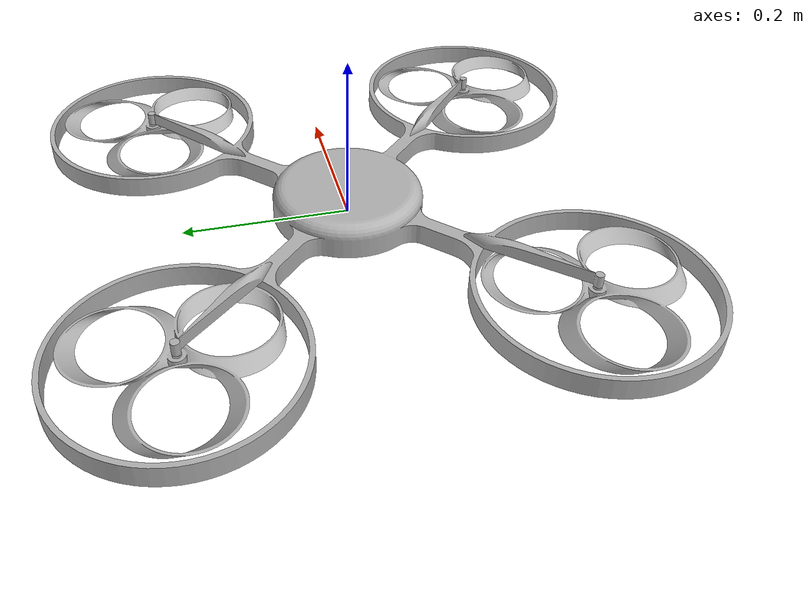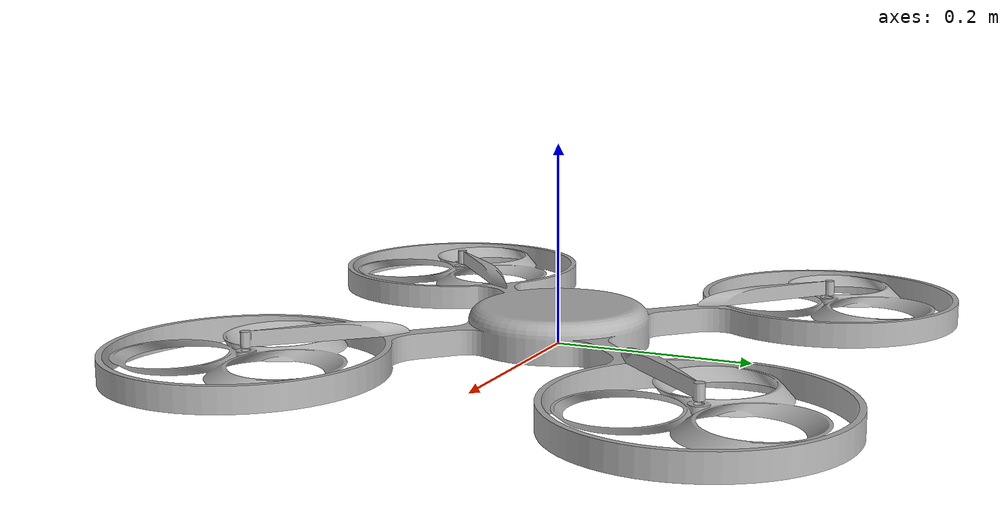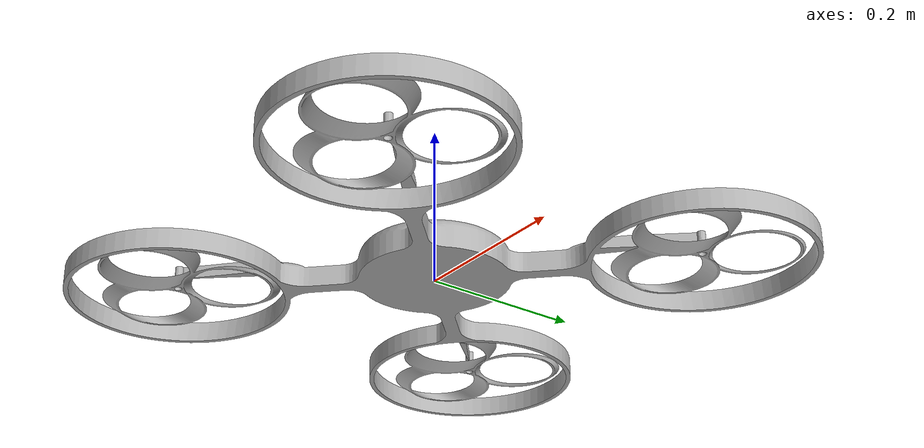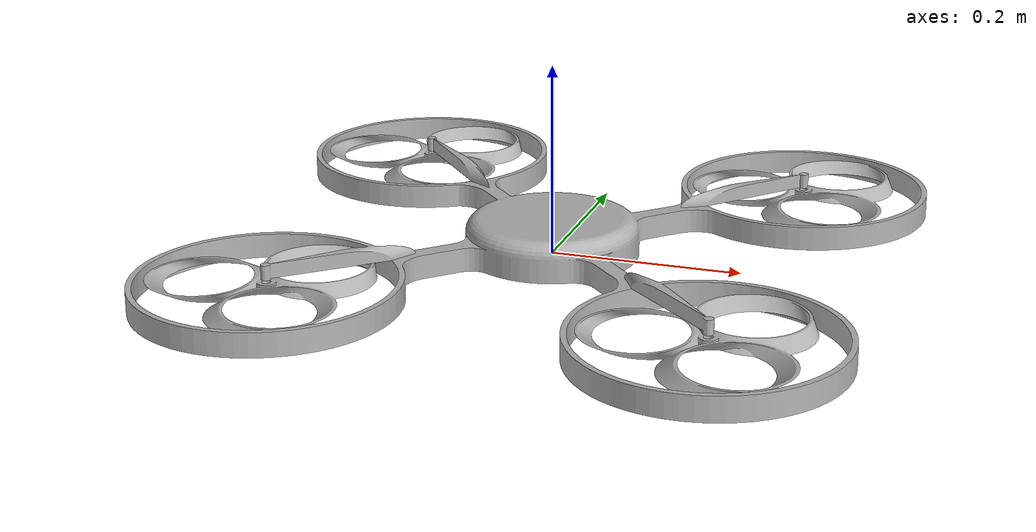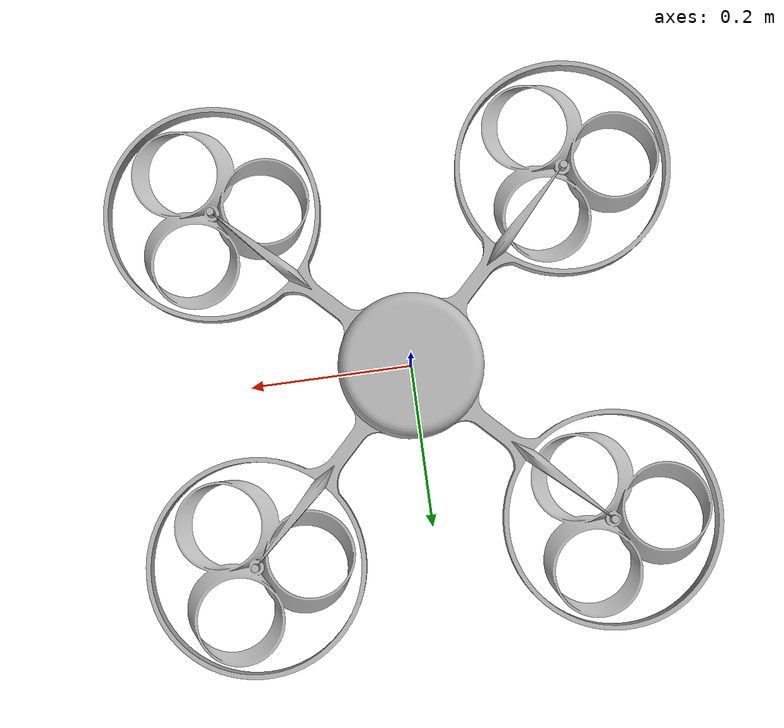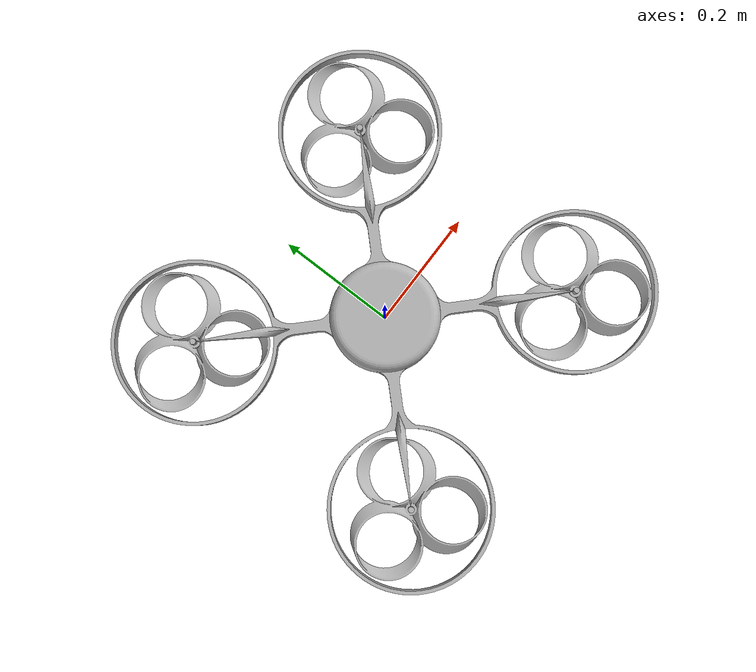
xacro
<?xml version="1.0" ?>
<robot name="my_drone" xmlns:xacro="http://www.ros.org/wiki/xacro">

<xacro:include filename="$(find my_drone_description)/urdf/materials.xacro" />
<xacro:include filename="$(find my_drone_description)/urdf/my_drone.gazebo" />

<link name="base_link">
  <inertial>
    <origin xyz="4.17965341753053e-17 5.015584101036636e-16 0.017301298080480712" rpy="0 0 0"/>
    <mass value="3.665311825085718"/>
    <inertia ixx="0.263092" iyy="0.263092" izz="0.52304" ixy="-0.0" iyz="-0.0" ixz="-0.0"/>
  </inertial>
  <visual>
    <origin xyz="0 0 0" rpy="0 0 0"/>
    <geometry>
      <mesh filename="file://$(find my_drone_description)/meshes/base_link.stl" scale="0.001 0.001 0.001"/>
    </geometry>
    <material name="silver"/>
  </visual>
  <collision>
    <origin xyz="0 0 0" rpy="0 0 0"/>
    <geometry>
      <mesh filename="file://$(find my_drone_description)/meshes/base_link.stl" scale="0.001 0.001 0.001"/>
    </geometry>
  </collision>
</link>

<link name="blade1_2">
  <inertial>
    <origin xyz="-0.0001204522493546134 4.7913499967966455e-05 -0.007840222731449874" rpy="0 0 0"/>
    <mass value="0.24117720097446887"/>
    <inertia ixx="0.00081" iyy="0.00081" izz="0.001616" ixy="0.0" iyz="0.0" ixz="-0.0"/>
  </inertial>
  <visual>
    <origin xyz="0.220002 -0.220002 -0.025" rpy="0 0 0"/>
    <geometry>
      <mesh filename="file://$(find my_drone_description)/meshes/blade1_2.stl" scale="0.001 0.001 0.001"/>
    </geometry>
    <material name="silver"/>
  </visual>
  <collision>
    <origin xyz="0.220002 -0.220002 -0.025" rpy="0 0 0"/>
    <geometry>
      <mesh filename="file://$(find my_drone_description)/meshes/blade1_2.stl" scale="0.001 0.001 0.001"/>
    </geometry>
  </collision>
</link>

<link name="blade1_3">
  <inertial>
    <origin xyz="-6.506576456175028e-05 0.00011240046749064203 -0.007840222731449811" rpy="0 0 0"/>
    <mass value="0.24117720097446887"/>
    <inertia ixx="0.00081" iyy="0.00081" izz="0.001616" ixy="0.0" iyz="0.0" ixz="-0.0"/>
  </inertial>
  <visual>
    <origin xyz="-0.220002 -0.220002 -0.025" rpy="0 0 0"/>
    <geometry>
      <mesh filename="file://$(find my_drone_description)/meshes/blade1_3.stl" scale="0.001 0.001 0.001"/>
    </geometry>
    <material name="silver"/>
  </visual>
  <collision>
    <origin xyz="-0.220002 -0.220002 -0.025" rpy="0 0 0"/>
    <geometry>
      <mesh filename="file://$(find my_drone_description)/meshes/blade1_3.stl" scale="0.001 0.001 0.001"/>
    </geometry>
  </collision>
</link>

<link name="blade1_4">
  <inertial>
    <origin xyz="-8.695143702061592e-05 9.709402994390048e-05 -0.007840222731449874" rpy="0 0 0"/>
    <mass value="0.24117720097446887"/>
    <inertia ixx="0.00081" iyy="0.00081" izz="0.001616" ixy="0.0" iyz="0.0" ixz="-0.0"/>
  </inertial>
  <visual>
    <origin xyz="-0.220002 0.220002 -0.025" rpy="0 0 0"/>
    <geometry>
      <mesh filename="file://$(find my_drone_description)/meshes/blade1_4.stl" scale="0.001 0.001 0.001"/>
    </geometry>
    <material name="silver"/>
  </visual>
  <collision>
    <origin xyz="-0.220002 0.220002 -0.025" rpy="0 0 0"/>
    <geometry>
      <mesh filename="file://$(find my_drone_description)/meshes/blade1_4.stl" scale="0.001 0.001 0.001"/>
    </geometry>
  </collision>
</link>

<link name="blade1_5">
  <inertial>
    <origin xyz="-7.907640569984609e-05 0.00010320621577208922 -0.007840222731449874" rpy="0 0 0"/>
    <mass value="0.24117720097446887"/>
    <inertia ixx="0.00081" iyy="0.00081" izz="0.001616" ixy="0.0" iyz="0.0" ixz="-0.0"/>
  </inertial>
  <visual>
    <origin xyz="0.220002 0.220002 -0.025" rpy="0 0 0"/>
    <geometry>
      <mesh filename="file://$(find my_drone_description)/meshes/blade1_5.stl" scale="0.001 0.001 0.001"/>
    </geometry>
    <material name="silver"/>
  </visual>
  <collision>
    <origin xyz="0.220002 0.220002 -0.025" rpy="0 0 0"/>
    <geometry>
      <mesh filename="file://$(find my_drone_description)/meshes/blade1_5.stl" scale="0.001 0.001 0.001"/>
    </geometry>
  </collision>
</link>

<joint name="Revolute 1" type="continuous">
  <origin xyz="-0.220002 0.220002 0.025" rpy="0 0 0"/>
  <parent link="base_link"/>
  <child link="blade1_2"/>
  <axis xyz="0.0 0.0 1.0"/>
</joint>

<joint name="Revolute 2" type="continuous">
  <origin xyz="0.220002 0.220002 0.025" rpy="0 0 0"/>
  <parent link="base_link"/>
  <child link="blade1_3"/>
  <axis xyz="0.0 0.0 1.0"/>
</joint>

<joint name="Revolute 3" type="continuous">
  <origin xyz="0.220002 -0.220002 0.025" rpy="0 0 0"/>
  <parent link="base_link"/>
  <child link="blade1_4"/>
  <axis xyz="0.0 0.0 1.0"/>
</joint>

<joint name="Revolute 4" type="continuous">
  <origin xyz="-0.220002 -0.220002 0.025" rpy="0 0 0"/>
  <parent link="base_link"/>
  <child link="blade1_5"/>
  <axis xyz="0.0 0.0 1.0"/>
</joint>

</robot>

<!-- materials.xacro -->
<robot name="my_drone" xmlns:xacro="http://www.ros.org/wiki/xacro" >

<material name="silver">
  <color rgba="0.700 0.700 0.700 1.000"/>
</material>

</robot>

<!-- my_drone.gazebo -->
<robot name="my_drone" xmlns:xacro="http://www.ros.org/wiki/xacro" >
<xacro:property name="body_color" value="Gazebo/Silver" />

<gazebo reference="base_link">
  <material>${body_color}</material>
  <mu1>0.2</mu1>
  <mu2>0.2</mu2>
  <self_collide>false</self_collide>
  <gravity>true</gravity>
</gazebo>

<gazebo reference="blade1_2">
  <material>${body_color}</material>
  <mu1>0.2</mu1>
  <mu2>0.2</mu2>
  <self_collide>false</self_collide>
</gazebo>

<gazebo reference="blade1_3">
  <material>${body_color}</material>
  <mu1>0.2</mu1>
  <mu2>0.2</mu2>
  <self_collide>false</self_collide>
</gazebo>

<gazebo reference="blade1_4">
  <material>${body_color}</material>
  <mu1>0.2</mu1>
  <mu2>0.2</mu2>
  <self_collide>false</self_collide>
</gazebo>

<gazebo reference="blade1_5">
  <material>${body_color}</material>
  <mu1>0.2</mu1>
  <mu2>0.2</mu2>
  <self_collide>false</self_collide>
</gazebo>

<!-- Multicopter velocity controller on the whole vehicle -->
<gazebo>
  <plugin
    filename="gz-sim-multicopter-control-system"
    name="gz::sim::systems::MulticopterVelocityControl">

    <!-- All topics are prefixed with this -->
    <robotNamespace>model/my_drone</robotNamespace>

    <!-- Topic for Twist commands (body-frame velocity + yaw rate) -->
    <commandSubTopic>cmd_vel</commandSubTopic>

    <!-- Optional enable/disable topic (bool) -->
    <enableSubTopic>enable</enableSubTopic>

    <!-- Link representing CoM / base of the vehicle -->
    <comLinkName>base_link</comLinkName>

    <!-- Very simple gains just to get off the ground; tune later -->
    <velocityGain>2.0 2.0 2.0</velocityGain>
    <attitudeGain>4.0 4.0 1.0</attitudeGain>
    <angularRateGain>3.0 3.0 1.0</angularRateGain>

    <!-- Basic limits -->
    <maxLinearAcceleration>5.0 5.0 5.0</maxLinearAcceleration>
    <maximumLinearVelocity>3.0 3.0 3.0</maximumLinearVelocity>
    <maximumAngularVelocity>1.0 1.0 1.0</maximumAngularVelocity>

    <!-- No estimator noise for now -->
    <linearVelocityNoiseMean>0 0 0</linearVelocityNoiseMean>
    <linearVelocityNoiseStdDev>0 0 0</linearVelocityNoiseStdDev>
    <angularVelocityNoiseMean>0 0 0</angularVelocityNoiseMean>
    <angularVelocityNoiseStdDev>0 0 0</angularVelocityNoiseStdDev>

    <rotorConfiguration>
      <rotor>
        <jointName>Revolute 1</jointName>
        <forceConstant>3.0e-05</forceConstant>
        <momentConstant>0.016</momentConstant>
        <direction>1</direction>    <!-- ccw -->
      </rotor>
      <rotor>
        <jointName>Revolute 2</jointName>
        <forceConstant>3.0e-05</forceConstant>
        <momentConstant>0.016</momentConstant>
        <direction>-1</direction>   <!-- cw -->
      </rotor>
      <rotor>
        <jointName>Revolute 3</jointName>
        <forceConstant>3.0e-05</forceConstant>
        <momentConstant>0.016</momentConstant>
        <direction>1</direction>    <!-- ccw -->
      </rotor>
      <rotor>
        <jointName>Revolute 4</jointName>
        <forceConstant>3.0e-05</forceConstant>
        <momentConstant>0.016</momentConstant>
        <direction>-1</direction>   <!-- cw -->
      </rotor>
    </rotorConfiguration>
  </plugin>
</gazebo>

<!-- Rotor 0 -->
<gazebo>
  <plugin
    filename="gz-sim-multicopter-motor-model-system"
    name="gz::sim::systems::MulticopterMotorModel">
    <robotNamespace>model/my_drone</robotNamespace>
    <jointName>Revolute 1</jointName>
    <linkName>blade1_2</linkName>
    <turningDirection>ccw</turningDirection>
    <timeConstantUp>0.0125</timeConstantUp>
    <timeConstantDown>0.025</timeConstantDown>
    <maxRotVelocity>800.0</maxRotVelocity>
    <motorConstant>3.0e-05</motorConstant>
    <momentConstant>0.016</momentConstant>
    <commandSubTopic>gazebo/command/motor_speed</commandSubTopic>
    <motorNumber>0</motorNumber>
    <rotorDragCoefficient>8.06428e-05</rotorDragCoefficient>
    <rollingMomentCoefficient>1e-06</rollingMomentCoefficient>
    <motorSpeedPubTopic>motor_speed/0</motorSpeedPubTopic>
    <rotorVelocitySlowdownSim>10</rotorVelocitySlowdownSim>
    <motorType>velocity</motorType>
  </plugin>
</gazebo>

<!-- Rotor 1 -->
<gazebo>
  <plugin
    filename="gz-sim-multicopter-motor-model-system"
    name="gz::sim::systems::MulticopterMotorModel">
    <robotNamespace>model/my_drone</robotNamespace>
    <jointName>Revolute 2</jointName>
    <linkName>blade1_3</linkName>
    <turningDirection>cw</turningDirection>
    <timeConstantUp>0.0125</timeConstantUp>
    <timeConstantDown>0.025</timeConstantDown>
    <maxRotVelocity>800.0</maxRotVelocity>
    <motorConstant>3.0e-05</motorConstant>
    <momentConstant>0.016</momentConstant>
    <commandSubTopic>gazebo/command/motor_speed</commandSubTopic>
    <motorNumber>1</motorNumber>
    <rotorDragCoefficient>8.06428e-05</rotorDragCoefficient>
    <rollingMomentCoefficient>1e-06</rollingMomentCoefficient>
    <motorSpeedPubTopic>motor_speed/1</motorSpeedPubTopic>
    <rotorVelocitySlowdownSim>10</rotorVelocitySlowdownSim>
    <motorType>velocity</motorType>
  </plugin>
</gazebo>

<!-- Rotor 2 -->
<gazebo>
  <plugin
    filename="gz-sim-multicopter-motor-model-system"
    name="gz::sim::systems::MulticopterMotorModel">
    <robotNamespace>model/my_drone</robotNamespace>
    <jointName>Revolute 3</jointName>
    <linkName>blade1_4</linkName>
    <turningDirection>ccw</turningDirection>
    <timeConstantUp>0.0125</timeConstantUp>
    <timeConstantDown>0.025</timeConstantDown>
    <maxRotVelocity>800.0</maxRotVelocity>
    <motorConstant>3.0e-05</motorConstant>
    <momentConstant>0.016</momentConstant>
    <commandSubTopic>gazebo/command/motor_speed</commandSubTopic>
    <motorNumber>2</motorNumber>
    <rotorDragCoefficient>8.06428e-05</rotorDragCoefficient>
    <rollingMomentCoefficient>1e-06</rollingMomentCoefficient>
    <motorSpeedPubTopic>motor_speed/2</motorSpeedPubTopic>
    <rotorVelocitySlowdownSim>10</rotorVelocitySlowdownSim>
    <motorType>velocity</motorType>
  </plugin>
</gazebo>

<!-- Rotor 3 -->
<gazebo>
  <plugin
    filename="gz-sim-multicopter-motor-model-system"
    name="gz::sim::systems::MulticopterMotorModel">
    <robotNamespace>model/my_drone</robotNamespace>
    <jointName>Revolute 4</jointName>
    <linkName>blade1_5</linkName>
    <turningDirection>cw</turningDirection>
    <timeConstantUp>0.0125</timeConstantUp>
    <timeConstantDown>0.025</timeConstantDown>
    <maxRotVelocity>800.0</maxRotVelocity>
    <motorConstant>3.0e-05</motorConstant>
    <momentConstant>0.016</momentConstant>
    <commandSubTopic>gazebo/command/motor_speed</commandSubTopic>
    <motorNumber>3</motorNumber>
    <rotorDragCoefficient>8.06428e-05</rotorDragCoefficient>
    <rollingMomentCoefficient>1e-06</rollingMomentCoefficient>
    <motorSpeedPubTopic>motor_speed/3</motorSpeedPubTopic>
    <rotorVelocitySlowdownSim>10</rotorVelocitySlowdownSim>
    <motorType>velocity</motorType>
  </plugin>
</gazebo>

</robot>
